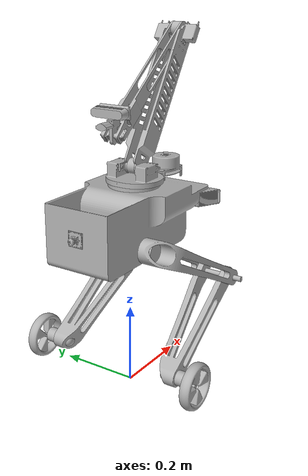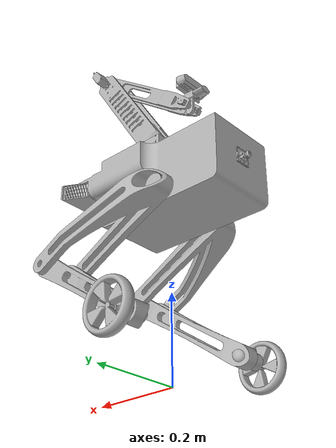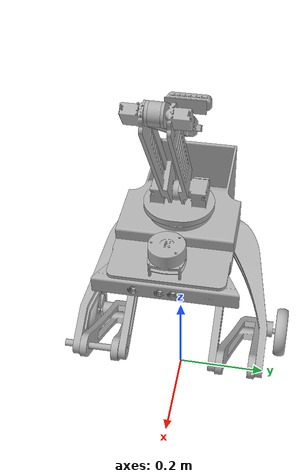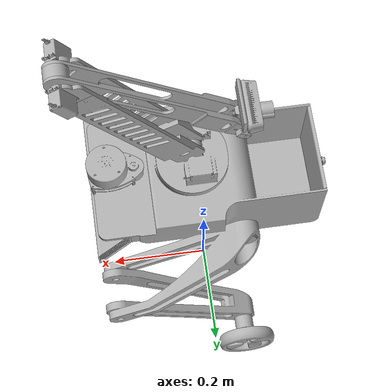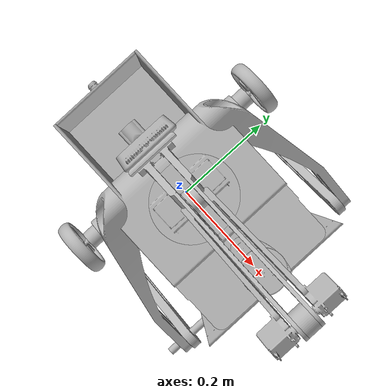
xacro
<?xml version="1.0" ?>
<robot name="vikram_dis" xmlns:xacro="http://www.ros.org/wiki/xacro">

<xacro:include filename="$(find vikram_dis_description)/urdf/materials.xacro" />
<xacro:include filename="$(find vikram_dis_description)/urdf/vikram_dis.trans" />
<xacro:include filename="$(find vikram_dis_description)/urdf/vikram_dis.gazebo" />
<link name="base_link">
  <inertial>
    <origin rpy="0 0 0" xyz="0.010761989671521484 0.005906678158446041 0.43560723373422566"/>
    <mass value="7.067521369442045"/>
    <inertia ixx="0.037702" ixy="-0.000184" ixz="-0.006128" iyy="0.061125" iyz="-4.7e-05" izz="0.069572"/>
  </inertial>
  <visual>
    <origin rpy="0 0 0" xyz="0 0 0"/>
    <geometry>
      <mesh filename="package://vikram_dis_description/meshes/base_link.stl" scale="0.001 0.001 0.001"/>
    </geometry>
    <material name="silver_default"/>
  </visual>
  <collision>
    <origin rpy="0 0 0" xyz="0 0 0"/>
    <geometry>
      <mesh filename="package://vikram_dis_description/meshes/base_link.stl" scale="0.001 0.001 0.001"/>
    </geometry>
  </collision>
</link>

<link name="kinect_link_1">
  <inertial>
    <origin rpy="0 0 0" xyz="0.031040820230747473 8.046398939702895e-05 0.0011790850564638578"/>
    <mass value="0.5422411898927701"/>
    <inertia ixx="0.002787" ixy="1.2e-05" ixz="-1e-06" iyy="0.000223" iyz="-2e-06" izz="0.002879"/>
  </inertial>
  <visual>
    <origin rpy="0 0 0" xyz="-0.145827 -0.006542 -0.459518"/>
    <geometry>
      <mesh filename="package://vikram_dis_description/meshes/kinect_link_1.stl" scale="0.001 0.001 0.001"/>
    </geometry>
    <material name="silver_default"/>
  </visual>
  <collision>
    <origin rpy="0 0 0" xyz="-0.145827 -0.006542 -0.459518"/>
    <geometry>
      <mesh filename="package://vikram_dis_description/meshes/kinect_link_1.stl" scale="0.001 0.001 0.001"/>
    </geometry>
  </collision>
</link>

<link name="camera_link_1">
  <inertial>
    <origin rpy="0 0 0" xyz="-0.005985668066420119 4.195691733565633e-06 -5.422414081512894e-05"/>
    <mass value="0.12265645188988797"/>
    <inertia ixx="1.3e-05" ixy="0.0" ixz="0.0" iyy="1e-05" iyz="0.0" izz="1.1e-05"/>
  </inertial>
  <visual>
    <origin rpy="0 0 0" xyz="0.202318 -0.004514 -0.441351"/>
    <geometry>
      <mesh filename="package://vikram_dis_description/meshes/camera_link_1.stl" scale="0.001 0.001 0.001"/>
    </geometry>
    <material name="silver_default"/>
  </visual>
  <collision>
    <origin rpy="0 0 0" xyz="0.202318 -0.004514 -0.441351"/>
    <geometry>
      <mesh filename="package://vikram_dis_description/meshes/camera_link_1.stl" scale="0.001 0.001 0.001"/>
    </geometry>
  </collision>
</link>

<link name="leftthigh_1">
  <inertial>
    <origin rpy="0 0 0" xyz="0.09689429572694824 0.04650557598173817 -0.05041905595274898"/>
    <mass value="0.4240185441189414"/>
    <inertia ixx="0.001296" ixy="-0.000287" ixz="0.001276" iyy="0.003342" iyz="0.00015" izz="0.003067"/>
  </inertial>
  <visual>
    <origin rpy="0 0 0" xyz="0.057916 -0.090406 -0.387875"/>
    <geometry>
      <mesh filename="package://vikram_dis_description/meshes/leftthigh_1.stl" scale="0.001 0.001 0.001"/>
    </geometry>
    <material name="silver_default"/>
  </visual>
  <collision>
    <origin rpy="0 0 0" xyz="0.057916 -0.090406 -0.387875"/>
    <geometry>
      <mesh filename="package://vikram_dis_description/meshes/leftthigh_1.stl" scale="0.001 0.001 0.001"/>
    </geometry>
  </collision>
</link>

<link name="rightthigh_1">
  <inertial>
    <origin rpy="0 0 0" xyz="0.09711412873531257 -0.04528588750671163 -0.051103183118579976"/>
    <mass value="0.4240185441189414"/>
    <inertia ixx="0.00129" ixy="0.00026" ixz="0.001279" iyy="0.003349" iyz="-0.000136" izz="0.003066"/>
  </inertial>
  <visual>
    <origin rpy="0 0 0" xyz="0.056919 0.079591 -0.387738"/>
    <geometry>
      <mesh filename="package://vikram_dis_description/meshes/rightthigh_1.stl" scale="0.001 0.001 0.001"/>
    </geometry>
    <material name="silver_default"/>
  </visual>
  <collision>
    <origin rpy="0 0 0" xyz="0.056919 0.079591 -0.387738"/>
    <geometry>
      <mesh filename="package://vikram_dis_description/meshes/rightthigh_1.stl" scale="0.001 0.001 0.001"/>
    </geometry>
  </collision>
</link>

<link name="motor_link_1_1">
  <inertial>
    <origin rpy="0 0 0" xyz="-4.2320993852505706e-05 0.0067397772639073705 -1.1375185344442151e-05"/>
    <mass value="0.06999823026998438"/>
    <inertia ixx="3.2e-05" ixy="0.0" ixz="-0.0" iyy="1.1e-05" iyz="-0.0" izz="3.2e-05"/>
  </inertial>
  <visual>
    <origin rpy="0 0 0" xyz="0.055577 0.174343 -0.088016"/>
    <geometry>
      <mesh filename="package://vikram_dis_description/meshes/motor_link_1_1.stl" scale="0.001 0.001 0.001"/>
    </geometry>
    <material name="silver_default"/>
  </visual>
  <collision>
    <origin rpy="0 0 0" xyz="0.055577 0.174343 -0.088016"/>
    <geometry>
      <mesh filename="package://vikram_dis_description/meshes/motor_link_1_1.stl" scale="0.001 0.001 0.001"/>
    </geometry>
  </collision>
</link>

<link name="motor_link_1_2">
  <inertial>
    <origin rpy="0 0 0" xyz="3.7389307303827e-05 -0.006740338975503607 -2.217474401300379e-05"/>
    <mass value="0.06999823026998438"/>
    <inertia ixx="3.2e-05" ixy="0.0" ixz="-0.0" iyy="1.1e-05" iyz="0.0" izz="3.2e-05"/>
  </inertial>
  <visual>
    <origin rpy="0 0 0" xyz="0.058328 -0.185646 -0.089193"/>
    <geometry>
      <mesh filename="package://vikram_dis_description/meshes/motor_link_1_2.stl" scale="0.001 0.001 0.001"/>
    </geometry>
    <material name="silver_default"/>
  </visual>
  <collision>
    <origin rpy="0 0 0" xyz="0.058328 -0.185646 -0.089193"/>
    <geometry>
      <mesh filename="package://vikram_dis_description/meshes/motor_link_1_2.stl" scale="0.001 0.001 0.001"/>
    </geometry>
  </collision>
</link>

<link name="wheel_link_2_2">
  <inertial>
    <origin rpy="0 0 0" xyz="0.00011618333810482773 -0.01985347611789301 -1.660510072408472e-05"/>
    <mass value="0.1426377919274306"/>
    <inertia ixx="0.000147" ixy="-1e-06" ixz="-0.0" iyy="0.000281" iyz="0.0" izz="0.000147"/>
  </inertial>
  <visual>
    <origin rpy="0 0 0" xyz="0.056711 0.200845 -0.081115"/>
    <geometry>
      <mesh filename="package://vikram_dis_description/meshes/wheel_link_2_2.stl" scale="0.001 0.001 0.001"/>
    </geometry>
    <material name="silver_default"/>
  </visual>
  <collision>
    <origin rpy="0 0 0" xyz="0.056711 0.200845 -0.081115"/>
    <geometry>
      <mesh filename="package://vikram_dis_description/meshes/wheel_link_2_2.stl" scale="0.001 0.001 0.001"/>
    </geometry>
  </collision>
</link>

<link name="wheel_link_2_1">
  <inertial>
    <origin rpy="0 0 0" xyz="-0.00011639354809600544 0.01985348551435112 1.6193369433745164e-05"/>
    <mass value="0.1426377919274306"/>
    <inertia ixx="0.000147" ixy="-1e-06" ixz="0.0" iyy="0.000281" iyz="0.0" izz="0.000147"/>
  </inertial>
  <visual>
    <origin rpy="0 0 0" xyz="0.05917 -0.212147 -0.082248"/>
    <geometry>
      <mesh filename="package://vikram_dis_description/meshes/wheel_link_2_1.stl" scale="0.001 0.001 0.001"/>
    </geometry>
    <material name="silver_default"/>
  </visual>
  <collision>
    <origin rpy="0 0 0" xyz="0.05917 -0.212147 -0.082248"/>
    <geometry>
      <mesh filename="package://vikram_dis_description/meshes/wheel_link_2_1.stl" scale="0.001 0.001 0.001"/>
    </geometry>
  </collision>
</link>

<link name="shoulder_link_1">
  <inertial>
    <origin rpy="0 0 0" xyz="0.1053568945975381 0.010444642439717357 0.16921020352325478"/>
    <mass value="0.3248629426538314"/>
    <inertia ixx="0.003938" ixy="-5e-06" ixz="-0.002287" iyy="0.005264" iyz="-9e-06" izz="0.001686"/>
  </inertial>
  <visual>
    <origin rpy="0 0 0" xyz="-0.022826 0.007519 -0.558234"/>
    <geometry>
      <mesh filename="package://vikram_dis_description/meshes/shoulder_link_1.stl" scale="0.001 0.001 0.001"/>
    </geometry>
    <material name="silver_default"/>
  </visual>
  <collision>
    <origin rpy="0 0 0" xyz="-0.022826 0.007519 -0.558234"/>
    <geometry>
      <mesh filename="package://vikram_dis_description/meshes/shoulder_link_1.stl" scale="0.001 0.001 0.001"/>
    </geometry>
  </collision>
</link>

<link name="elbow_link_1">
  <inertial>
    <origin rpy="0 0 0" xyz="-0.1676136269102525 -0.010877895969920668 -0.1315161886982421"/>
    <mass value="0.14217501750592101"/>
    <inertia ixx="0.00078" ixy="-6e-06" ixz="-0.000932" iyy="0.001955" iyz="-5e-06" izz="0.001237"/>
  </inertial>
  <visual>
    <origin rpy="0 0 0" xyz="-0.212379 -0.012807 -0.862827"/>
    <geometry>
      <mesh filename="package://vikram_dis_description/meshes/elbow_link_1.stl" scale="0.001 0.001 0.001"/>
    </geometry>
    <material name="silver_default"/>
  </visual>
  <collision>
    <origin rpy="0 0 0" xyz="-0.212379 -0.012807 -0.862827"/>
    <geometry>
      <mesh filename="package://vikram_dis_description/meshes/elbow_link_1.stl" scale="0.001 0.001 0.001"/>
    </geometry>
  </collision>
</link>

<link name="wrist_link_1">
  <inertial>
    <origin rpy="0 0 0" xyz="-0.00039180122453902344 0.003989844954318769 0.016240023628286027"/>
    <mass value="0.01246916080662524"/>
    <inertia ixx="4e-06" ixy="-0.0" ixz="0.0" iyy="4e-06" iyz="0.0" izz="1e-06"/>
  </inertial>
  <visual>
    <origin rpy="0 0 0" xyz="0.063395 0.002587 -0.646298"/>
    <geometry>
      <mesh filename="package://vikram_dis_description/meshes/wrist_link_1.stl" scale="0.001 0.001 0.001"/>
    </geometry>
    <material name="silver_default"/>
  </visual>
  <collision>
    <origin rpy="0 0 0" xyz="0.063395 0.002587 -0.646298"/>
    <geometry>
      <mesh filename="package://vikram_dis_description/meshes/wrist_link_1.stl" scale="0.001 0.001 0.001"/>
    </geometry>
  </collision>
</link>

<link name="grip_link_1">
  <inertial>
    <origin rpy="0 0 0" xyz="-0.038797241893088086 -0.0001991975188514062 0.0034707933509176003"/>
    <mass value="0.012180779699964627"/>
    <inertia ixx="1e-06" ixy="-0.0" ixz="0.0" iyy="3e-06" iyz="-0.0" izz="3e-06"/>
  </inertial>
  <visual>
    <origin rpy="0 0 0" xyz="0.050444 -0.001435 -0.669602"/>
    <geometry>
      <mesh filename="package://vikram_dis_description/meshes/grip_link_1.stl" scale="0.001 0.001 0.001"/>
    </geometry>
    <material name="silver_default"/>
  </visual>
  <collision>
    <origin rpy="0 0 0" xyz="0.050444 -0.001435 -0.669602"/>
    <geometry>
      <mesh filename="package://vikram_dis_description/meshes/grip_link_1.stl" scale="0.001 0.001 0.001"/>
    </geometry>
  </collision>
</link>

<link name="arm_base_1">
  <inertial>
    <origin rpy="0 0 0" xyz="-0.005791863126462488 -0.0026412661500057584 0.017229692125318885"/>
    <mass value="0.3055003056442891"/>
    <inertia ixx="0.000454" ixy="1e-06" ixz="1.4e-05" iyy="0.000272" iyz="-0.0" izz="0.000597"/>
  </inertial>
  <visual>
    <origin rpy="0 0 0" xyz="-0.024706 -0.005115 -0.52135"/>
    <geometry>
      <mesh filename="package://vikram_dis_description/meshes/arm_base_1.stl" scale="0.001 0.001 0.001"/>
    </geometry>
    <material name="silver_default"/>
  </visual>
  <collision>
    <origin rpy="0 0 0" xyz="-0.024706 -0.005115 -0.52135"/>
    <geometry>
      <mesh filename="package://vikram_dis_description/meshes/arm_base_1.stl" scale="0.001 0.001 0.001"/>
    </geometry>
  </collision>
</link>

<link name="cam_support_1">
  <inertial>
    <origin rpy="0 0 0" xyz="0.005829217868122134 2.218219364242993e-05 0.015136022937292659"/>
    <mass value="0.015667625068621845"/>
    <inertia ixx="9e-06" ixy="0.0" ixz="0.0" iyy="1e-06" iyz="-0.0" izz="8e-06"/>
  </inertial>
  <visual>
    <origin rpy="0 0 0" xyz="0.064281 -0.001377 -0.684292"/>
    <geometry>
      <mesh filename="package://vikram_dis_description/meshes/cam_support_1.stl" scale="0.001 0.001 0.001"/>
    </geometry>
    <material name="silver_default"/>
  </visual>
  <collision>
    <origin rpy="0 0 0" xyz="0.064281 -0.001377 -0.684292"/>
    <geometry>
      <mesh filename="package://vikram_dis_description/meshes/cam_support_1.stl" scale="0.001 0.001 0.001"/>
    </geometry>
  </collision>
</link>

<link name="laser_link_1">
  <inertial>
    <origin rpy="0 0 0" xyz="0.013004844125734216 0.00014021108847628132 0.034655130535815815"/>
    <mass value="0.18084811340421866"/>
    <inertia ixx="8.4e-05" ixy="-0.0" ixz="-2.2e-05" iyy="0.000131" iyz="0.0" izz="0.000149"/>
  </inertial>
  <visual>
    <origin rpy="0 0 0" xyz="-0.150644 -0.006548 -0.487181"/>
    <geometry>
      <mesh filename="package://vikram_dis_description/meshes/laser_link_1.stl" scale="0.001 0.001 0.001"/>
    </geometry>
    <material name="silver_default"/>
  </visual>
  <collision>
    <origin rpy="0 0 0" xyz="-0.150644 -0.006548 -0.487181"/>
    <geometry>
      <mesh filename="package://vikram_dis_description/meshes/laser_link_1.stl" scale="0.001 0.001 0.001"/>
    </geometry>
  </collision>
</link>

<link name="realsense_link_1">
  <inertial>
    <origin rpy="0 0 0" xyz="-0.01156884797060824 0.003455263003606255 -0.0004465098711574633"/>
    <mass value="0.04228675377977692"/>
    <inertia ixx="2.8e-05" ixy="0.0" ixz="-0.0" iyy="4e-06" iyz="-0.0" izz="2.8e-05"/>
  </inertial>
  <visual>
    <origin rpy="0 0 0" xyz="0.062122 -0.001378 -0.699345"/>
    <geometry>
      <mesh filename="package://vikram_dis_description/meshes/realsense_link_1.stl" scale="0.001 0.001 0.001"/>
    </geometry>
    <material name="silver_default"/>
  </visual>
  <collision>
    <origin rpy="0 0 0" xyz="0.062122 -0.001378 -0.699345"/>
    <geometry>
      <mesh filename="package://vikram_dis_description/meshes/realsense_link_1.stl" scale="0.001 0.001 0.001"/>
    </geometry>
  </collision>
</link>

<link name="front_name_1">
  <inertial>
    <origin rpy="0 0 0" xyz="0.0009886391869325106 0.002240109079289678 -0.00026722291772435236"/>
    <mass value="0.0013045732982823952"/>
    <inertia ixx="1e-06" ixy="0.0" ixz="0.0" iyy="0.0" iyz="0.0" izz="1e-06"/>
  </inertial>
  <visual>
    <origin rpy="0 0 0" xyz="-0.131142 -0.006494 -0.411713"/>
    <geometry>
      <mesh filename="package://vikram_dis_description/meshes/front_name_1.stl" scale="0.001 0.001 0.001"/>
    </geometry>
    <material name="silver_default"/>
  </visual>
  <collision>
    <origin rpy="0 0 0" xyz="-0.131142 -0.006494 -0.411713"/>
    <geometry>
      <mesh filename="package://vikram_dis_description/meshes/front_name_1.stl" scale="0.001 0.001 0.001"/>
    </geometry>
  </collision>
</link>

<link name="rightleg_1">
  <inertial>
    <origin rpy="0 0 0" xyz="-0.12012286223126097 0.03292496120188243 -0.0816975834089387"/>
    <mass value="0.33293610955358743"/>
    <inertia ixx="0.001612" ixy="-0.000206" ixz="-0.001899" iyy="0.004214" iyz="-0.000141" izz="0.003097"/>
  </inertial>
  <visual>
    <origin rpy="0 0 0" xyz="-0.191706 0.173029 -0.257869"/>
    <geometry>
      <mesh filename="package://vikram_dis_description/meshes/rightleg_1.stl" scale="0.001 0.001 0.001"/>
    </geometry>
    <material name="silver_default"/>
  </visual>
  <collision>
    <origin rpy="0 0 0" xyz="-0.191706 0.173029 -0.257869"/>
    <geometry>
      <mesh filename="package://vikram_dis_description/meshes/rightleg_1.stl" scale="0.001 0.001 0.001"/>
    </geometry>
  </collision>
</link>

<link name="leftleg_1">
  <inertial>
    <origin rpy="0 0 0" xyz="-0.11989589808092872 0.04579943998290448 -0.08212882937282706"/>
    <mass value="0.33293610955358743"/>
    <inertia ixx="0.001616" ixy="0.000178" ixz="-0.001904" iyy="0.004218" iyz="0.000121" izz="0.003088"/>
  </inertial>
  <visual>
    <origin rpy="0 0 0" xyz="-0.190049 -0.106966 -0.258067"/>
    <geometry>
      <mesh filename="package://vikram_dis_description/meshes/leftleg_1.stl" scale="0.001 0.001 0.001"/>
    </geometry>
    <material name="silver_default"/>
  </visual>
  <collision>
    <origin rpy="0 0 0" xyz="-0.190049 -0.106966 -0.258067"/>
    <geometry>
      <mesh filename="package://vikram_dis_description/meshes/leftleg_1.stl" scale="0.001 0.001 0.001"/>
    </geometry>
  </collision>
</link>

<link name="rod_1">
  <inertial>
    <origin rpy="0 0 0" xyz="-0.0001641310493621928 0.027999088902548985 2.294266050278937e-05"/>
    <mass value="0.01959163529215445"/>
    <inertia ixx="2.7e-05" ixy="0.0" ixz="0.0" iyy="0.0" iyz="-0.0" izz="2.7e-05"/>
  </inertial>
  <visual>
    <origin rpy="0 0 0" xyz="-0.1917 0.172029 -0.257869"/>
    <geometry>
      <mesh filename="package://vikram_dis_description/meshes/rod_1.stl" scale="0.001 0.001 0.001"/>
    </geometry>
    <material name="silver_default"/>
  </visual>
  <collision>
    <origin rpy="0 0 0" xyz="-0.1917 0.172029 -0.257869"/>
    <geometry>
      <mesh filename="package://vikram_dis_description/meshes/rod_1.stl" scale="0.001 0.001 0.001"/>
    </geometry>
  </collision>
</link>

<link name="rod_2">
  <inertial>
    <origin rpy="0 0 0" xyz="0.0001647060768620312 -0.027999269194341786 -2.2675294601759433e-05"/>
    <mass value="0.01959163529215445"/>
    <inertia ixx="2.7e-05" ixy="0.0" ixz="0.0" iyy="0.0" iyz="-0.0" izz="2.7e-05"/>
  </inertial>

  <collision>
    <origin rpy="0 0 0" xyz="-0.189585 -0.185964 -0.258131"/>
    <geometry>
      <mesh filename="package://vikram_dis_description/meshes/rod_2.stl" scale="0.001 0.001 0.001"/>
    </geometry>
  </collision>
</link>

<link name="stand_1">
  <inertial>
    <origin rpy="0 0 0" xyz="0.0592642999235653 0.009345756081004797 -0.14300593642992077"/>
    <mass value="0.11613787843167664"/>
    <inertia ixx="0.000536" ixy="-1e-06" ixz="0.000176" iyy="0.000601" iyz="1e-06" izz="7.7e-05"/>
  </inertial>

  <collision>
    <origin rpy="0 0 0" xyz="-0.191911 0.208029 -0.25784"/>
    <geometry>
      <mesh filename="package://vikram_dis_description/meshes/stand_1.stl" scale="0.001 0.001 0.001"/>
    </geometry>
  </collision>
</link>

<link name="stand_2">
  <inertial>
    <origin rpy="0 0 0" xyz="0.061855284133028765 -0.008420795671348957 -0.14196366414859674"/>
    <mass value="0.11613787843167664"/>
    <inertia ixx="0.00053" ixy="-1e-06" ixz="0.000184" iyy="0.000601" iyz="1e-06" izz="8.3e-05"/>
  </inertial>

  <collision>
    <origin rpy="0 0 0" xyz="-0.189374 -0.221964 -0.25816"/>
    <geometry>
      <mesh filename="package://vikram_dis_description/meshes/stand_2.stl" scale="0.001 0.001 0.001"/>
    </geometry>
  </collision>
</link>

<joint name="Rigid1" type="fixed">
  <origin rpy="0 0 0" xyz="0.145827 0.006542 0.459518"/>
  <parent link="base_link"/>
  <child link="kinect_link_1"/>
</joint>

<joint name="Rigid3" type="fixed">
  <origin rpy="0 0 0" xyz="-0.202318 0.004514 0.441351"/>
  <parent link="base_link"/>
  <child link="camera_link_1"/>
</joint>

<joint name="thigh_base_left" type="fixed">
  <origin rpy="0 0 0" xyz="-0.057916 0.090406 0.387875"/>
  <parent link="base_link"/>
  <child link="leftthigh_1"/>
  <axis xyz="-0.005867 0.999982 0.000806"/>
</joint>

<joint name="thigh_base_right" type="fixed">
  <origin rpy="0 0 0" xyz="-0.056919 -0.079591 0.387738"/>
  <parent link="base_link"/>
  <child link="rightthigh_1"/>
  <axis xyz="0.005867 -0.999982 -0.000806"/>
</joint>

<joint name="Rigid28" type="fixed">
  <origin rpy="0 0 0" xyz="-0.247283 -0.001314 -0.169853"/>
  <parent link="rightleg_1"/>
  <child link="motor_link_1_1"/>
</joint>

<joint name="Rigid29" type="fixed">
  <origin rpy="0 0 0" xyz="-0.248377 0.07868 -0.168874"/>
  <parent link="leftleg_1"/>
  <child link="motor_link_1_2"/>
</joint>

<joint name="wheel_right" type="continuous">
  <origin rpy="0 0 0" xyz="-0.001134 -0.026502 -0.006901"/>
  <parent link="motor_link_1_1"/>
  <child link="wheel_link_2_2"/>
  <axis xyz="0.005867 0.999982 0.000806"/>
</joint>

<joint name="wheel_left" type="continuous">
  <origin rpy="0 0 0" xyz="-0.000842 0.026501 -0.006945"/>
  <parent link="motor_link_1_2"/>
  <child link="wheel_link_2_1"/>
  <axis xyz="0.005867 0.999982 0.000806"/>
</joint>

<joint name="shoulder" type="fixed">
  <origin rpy="0 0 0" xyz="-0.00188 -0.012634 0.036884"/>
  <parent link="arm_base_1"/>
  <child link="shoulder_link_1"/>
  <axis xyz="-0.005867 0.999982 0.000806"/>
</joint>

<joint name="elbow" type="fixed">
  <origin rpy="0 0 0" xyz="0.189553 0.020326 0.304593"/>
  <parent link="shoulder_link_1"/>
  <child link="elbow_link_1"/>
  <axis xyz="0.005867 -0.999982 -0.000806"/>
</joint>

<joint name="wrist" type="fixed">
  <origin rpy="0 0 0" xyz="-0.275774 -0.015394 -0.216529"/>
  <parent link="elbow_link_1"/>
  <child link="wrist_link_1"/>
  <axis xyz="-0.005867 0.999982 0.000806"/>
</joint>

<joint name="Rigid41" type="fixed">
  <origin rpy="0 0 0" xyz="0.012951 0.004022 0.023304"/>
  <parent link="wrist_link_1"/>
  <child link="grip_link_1"/>
</joint>

<joint name="arm_base" type="fixed">
  <origin rpy="0 0 0" xyz="0.024706 0.005115 0.52135"/>
  <parent link="base_link"/>
  <child link="arm_base_1"/>
  <axis xyz="-0.006594 -0.000845 0.999978"/>
</joint>

<joint name="Rigid43" type="fixed">
  <origin rpy="0 0 0" xyz="-0.000886 0.003964 0.037994"/>
  <parent link="wrist_link_1"/>
  <child link="cam_support_1"/>
</joint>

<joint name="Rigid46" type="fixed">
  <origin rpy="0 0 0" xyz="0.150644 0.006548 0.498181"/>
  <parent link="base_link"/>
  <child link="laser_link_1"/>
</joint>

<joint name="Rigid48" type="fixed">
  <origin rpy="0 0 0" xyz="0.002159 1e-06 0.015053"/>
  <parent link="cam_support_1"/>
  <child link="realsense_link_1"/>
</joint>

<joint name="Rigid51" type="fixed">
  <origin rpy="0 0 0" xyz="0.131142 0.006494 0.411713"/>
  <parent link="base_link"/>
  <child link="front_name_1"/>
</joint>

<joint name="leg_thigh_right" type="fixed">
  <origin rpy="0 0 0" xyz="0.248625 -0.093438 -0.129869"/>
  <parent link="rightthigh_1"/>
  <child link="rightleg_1"/>
  <axis xyz="-0.005867 0.999982 0.000806"/>
</joint>

<joint name="leg_thigh_left" type="fixed">
  <origin rpy="0 0 0" xyz="0.247965 0.01656 -0.129808"/>
  <parent link="leftthigh_1"/>
  <child link="leftleg_1"/>
  <axis xyz="0.005867 -0.999982 -0.000806"/>
</joint>

<joint name="rod_leg_right" type="fixed">
  <origin rpy="0 0 0" xyz="-6e-06 0.001 0.0"/>
  <parent link="rightleg_1"/>
  <child link="rod_1"/>
</joint>

<joint name="rod_leg_left" type="fixed">
  <origin rpy="0 0 0" xyz="-0.000464 0.078998 6.4e-05"/>
  <parent link="leftleg_1"/>
  <child link="rod_2"/>
</joint>

<joint name="Rev58" type="fixed">
  <origin rpy="0 0 0" xyz="0.000211 -0.036 -2.9e-05"/>
  <parent link="rod_1"/>
  <child link="stand_1"/>
  <axis xyz="0.005867 -0.999982 -0.000806"/>
</joint>

<joint name="Rev59" type="fixed">
  <origin rpy="0 0 0" xyz="-0.000211 0.036 2.9e-05"/>
  <parent link="rod_2"/>
  <child link="stand_2"/>
  <axis xyz="-0.005867 0.999982 0.000806"/>
</joint>

</robot>

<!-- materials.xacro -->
<robot name="vikram_dis" xmlns:xacro="http://www.ros.org/wiki/xacro" >

<material name="silver_default">
  <color rgba="0.700 0.700 0.700 1.000"/>
</material>

</robot>

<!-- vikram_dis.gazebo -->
<robot name="vikram_dis" xmlns:xacro="http://www.ros.org/wiki/xacro" >

<xacro:property name="body_color" value="Gazebo/Silver" />

<gazebo>
  <plugin filename="libgazebo_ros_control.so" name="control"/>
</gazebo>
<gazebo reference="base_link">
  <material>${body_color}</material>
  <mu1>0.2</mu1>
  <mu2>0.2</mu2>
  <selfCollide>true</selfCollide>
  <gravity>true</gravity>
</gazebo>

<gazebo reference="kinect_link_1">
  <material>${body_color}</material>
  <mu1>0.2</mu1>
  <mu2>0.2</mu2>
  <selfCollide>true</selfCollide>
</gazebo>

<gazebo reference="camera_link_1">
  <material>${body_color}</material>
  <mu1>0.2</mu1>
  <mu2>0.2</mu2>
  <selfCollide>true</selfCollide>
</gazebo>

<gazebo reference="leftthigh_1">
  <material>${body_color}</material>
  <mu1>0.2</mu1>
  <mu2>0.2</mu2>
  <selfCollide>true</selfCollide>
</gazebo>

<gazebo reference="rightthigh_1">
  <material>${body_color}</material>
  <mu1>0.2</mu1>
  <mu2>0.2</mu2>
  <selfCollide>true</selfCollide>
</gazebo>

<gazebo reference="motor_link_1_1">
  <material>${body_color}</material>
  <mu1>0.2</mu1>
  <mu2>0.2</mu2>
  <selfCollide>true</selfCollide>
</gazebo>

<gazebo reference="motor_link_1_2">
  <material>${body_color}</material>
  <mu1>0.2</mu1>
  <mu2>0.2</mu2>
  <selfCollide>true</selfCollide>
</gazebo>

<gazebo reference="wheel_link_2_2">
  <material>${body_color}</material>
  <mu1>100</mu1>
  <mu2>100</mu2>
  <selfCollide>true</selfCollide>
</gazebo>

<gazebo reference="wheel_link_2_1">
  <material>${body_color}</material>
  <mu1>100</mu1>
  <mu2>100</mu2>
  <selfCollide>true</selfCollide>
</gazebo>

<gazebo reference="shoulder_link_1">
  <material>${body_color}</material>
  <mu1>0.2</mu1>
  <mu2>0.2</mu2>
  <selfCollide>true</selfCollide>
</gazebo>

<gazebo reference="elbow_link_1">
  <material>${body_color}</material>
  <mu1>0.2</mu1>
  <mu2>0.2</mu2>
  <selfCollide>true</selfCollide>
</gazebo>

<gazebo reference="wrist_link_1">
  <material>${body_color}</material>
  <mu1>0.2</mu1>
  <mu2>0.2</mu2>
  <selfCollide>true</selfCollide>
</gazebo>

<gazebo reference="grip_link_1">
  <material>${body_color}</material>
  <mu1>0.2</mu1>
  <mu2>0.2</mu2>
  <selfCollide>true</selfCollide>
</gazebo>

<gazebo reference="arm_base_1">
  <material>${body_color}</material>
  <mu1>0.2</mu1>
  <mu2>0.2</mu2>
  <selfCollide>true</selfCollide>
</gazebo>

<gazebo reference="cam_support_1">
  <material>${body_color}</material>
  <mu1>0.2</mu1>
  <mu2>0.2</mu2>
  <selfCollide>true</selfCollide>
</gazebo>

<gazebo reference="laser_link_1">
  <material>${body_color}</material>
  <mu1>0.2</mu1>
  <mu2>0.2</mu2>
  <selfCollide>true</selfCollide>
</gazebo>

<gazebo reference="realsense_link_1">
  <material>${body_color}</material>
  <mu1>0.2</mu1>
  <mu2>0.2</mu2>
  <selfCollide>true</selfCollide>
</gazebo>

<gazebo reference="front_name_1">
  <material>${body_color}</material>
  <mu1>0.2</mu1>
  <mu2>0.2</mu2>
  <selfCollide>true</selfCollide>
</gazebo>

<gazebo reference="rightleg_1">
  <material>${body_color}</material>
  <mu1>0.2</mu1>
  <mu2>0.2</mu2>
  <selfCollide>true</selfCollide>
</gazebo>

<gazebo reference="leftleg_1">
  <material>${body_color}</material>
  <mu1>0.2</mu1>
  <mu2>0.2</mu2>
  <selfCollide>true</selfCollide>
</gazebo>

<gazebo reference="rod_1">
  <material>${body_color}</material>
  <mu1>0.2</mu1>
  <mu2>0.2</mu2>
  <selfCollide>true</selfCollide>
</gazebo>

<gazebo reference="rod_2">
  <material>${body_color}</material>
  <mu1>0.2</mu1>
  <mu2>0.2</mu2>
  <selfCollide>true</selfCollide>
</gazebo>

<gazebo reference="stand_1">
  <material>${body_color}</material>
  <mu1>0.01</mu1>
  <mu2>0.01</mu2>
  <selfCollide>true</selfCollide>
</gazebo>

<gazebo reference="stand_2">
  <material>${body_color}</material>
  <mu1>0.01</mu1>
  <mu2>0.01</mu2>
  <selfCollide>true</selfCollide>
</gazebo>
  <!-- camera -->
  <gazebo reference="camera_link_1">
    <sensor type="camera" name="back_camera">
      <update_rate>30.0</update_rate>
      <camera name="back_camera">
        <horizontal_fov>1.3962634</horizontal_fov>
        <image>
          <width>800</width>
          <height>800</height>
          <format>R8G8B8</format>
        </image>
        <clip>
          <near>0.02</near>
          <far>300</far>
        </clip>
        <noise>
          <type>gaussian</type>
          <!-- Noise is sampled independently per pixel on each frame.
               That pixel's noise value is added to each of its color
               channels, which at that point lie in the range [0,1]. -->
          <mean>0.0</mean>
          <stddev>0.007</stddev>
        </noise>
      </camera>
      <plugin name="camera_controller" filename="libgazebo_ros_camera.so">
        <alwaysOn>true</alwaysOn>
        <updateRate>0.0</updateRate>
        <cameraName>back_camera</cameraName>
        <imageTopicName>image_raw</imageTopicName>
        <cameraInfoTopicName>camera_info</cameraInfoTopicName>
        <frameName>camera_link_1</frameName>
        <hackBaseline>0.07</hackBaseline>
        <distortionK1>0.0</distortionK1>
        <distortionK2>0.0</distortionK2>
        <distortionK3>0.0</distortionK3>
        <distortionT1>0.0</distortionT1>
        <distortionT2>0.0</distortionT2>
      </plugin>
    </sensor>
  </gazebo>
<!-- Kinect camera-->
<gazebo reference="kinect_link_1">
  <sensor name="kinect_link_1_camera" type="depth">
    <pose>0 0 0 0 0 0</pose>
    <visualize>true</visualize>
    <update_rate>20</update_rate>
    <camera>
      <horizontal_fov>1.047198</horizontal_fov>
      <image>
        <width>640</width>
        <height>480</height>
        <format>R8G8B8</format>
      </image>
      <clip>
        <near>0.2</near>
        <far>6</far>
      </clip>
    </camera>
    <plugin name="kinect_link_1_controller" filename="libgazebo_ros_openni_kinect.so">
      <baseline>0.5</baseline>
      <alwaysOn>true</alwaysOn>
      <updateRate>0.0</updateRate>

      <cameraName>kinect</cameraName>
      <imageTopicName>/kinect/color/image_raw</imageTopicName>
      <cameraInfoTopicName>/kinect/color/camera_info</cameraInfoTopicName>
      <depthImageTopicName>/kinect/depth/image_raw</depthImageTopicName>
      <depthImageInfoTopicName>/kinect/depth/camera_info</depthImageInfoTopicName>
      <pointCloudTopicName>/kinect/depth/points</pointCloudTopicName>
      <frameName>kinect_depth_link</frameName>
      <pointCloudCutoff>0.5</pointCloudCutoff>
      <pointCloudCutoffMax>8.0</pointCloudCutoffMax>
      <distortionK1>0.00000001</distortionK1>
      <distortionK2>0.00000001</distortionK2>
      <distortionK3>0.00000001</distortionK3>
      <distortionT1>0.00000001</distortionT1>
      <distortionT2>0.00000001</distortionT2>
      <CxPrime>0</CxPrime>
      <Cx>0</Cx>
      <Cy>0</Cy>
      <focalLength>0</focalLength>
      <hackBaseline>0</hackBaseline>
    </plugin>
  </sensor>
</gazebo>

  <!-- laser -->
  <gazebo reference="laser_link_1">
    <sensor type="ray" name="laser_link_1">
      <pose>0 0 0 0 0 0</pose>
      <visualize>true</visualize>
      <update_rate>40</update_rate>
      <ray>
        <scan>
          <horizontal>
            <samples>720</samples>
            <resolution>1</resolution>
            <min_angle>-1.57</min_angle>
            <max_angle>1.57</max_angle>
          </horizontal>
        </scan>
        <range>
          <min>0.1</min>
          <max>6.0</max>
          <resolution>0.01</resolution>
        </range>
        <noise>
          <type>gaussian</type>
          <mean>0.0</mean>
          <stddev>0.01</stddev>
        </noise>
      </ray>
      <plugin name="gazebo_ros_head_hokuyo_controller" filename="libgazebo_ros_laser.so">
        <topicName>/laser/scan</topicName>
        <frameName>laser_link_1</frameName>
      </plugin>
    </sensor>
  </gazebo>

<!-- differential drive-->
  <gazebo>
    <plugin name="differential_drive_controller" filename="libgazebo_ros_diff_drive.so">

      <!-- Plugin update rate in Hz -->
      <updateRate>40</updateRate>

      <!-- Name of left joint, defaults to `left_joint` -->
      <leftJoint>wheel_left</leftJoint>

      <!-- Name of right joint, defaults to `right_joint` -->
      <rightJoint>wheel_right</rightJoint>

      <!-- The distance from the center of one wheel to the other, in meters, defaults to 0.34 m -->
      <wheelSeparation>0.429</wheelSeparation>

      <!-- Diameter of the wheels, in meters, defaults to 0.15 m -->
      <wheelDiameter>0.108</wheelDiameter>

      <!-- Wheel acceleration, in rad/s^2, defaults to 0.0 rad/s^2 -->
      <wheelAcceleration>1.0</wheelAcceleration>

      <!-- Maximum torque which the wheels can produce, in Nm, defaults to 5 Nm -->
      <wheelTorque>200</wheelTorque>

      <!-- Topic to receive geometry_msgs/Twist message commands, defaults to `cmd_vel` -->
      <commandTopic>cmd_vel</commandTopic>

      <!-- Topic to publish nav_msgs/Odometry messages, defaults to `odom` -->
      <odometryTopic>odom</odometryTopic>

      <!-- Odometry frame, defaults to `odom` -->
      <odometryFrame>odom</odometryFrame>

      <!-- Robot frame to calculate odometry from, defaults to `base_footprint` -->
      <robotBaseFrame>base_link</robotBaseFrame>

      <!-- Odometry source, 0 for ENCODER, 1 for WORLD, defaults to WORLD -->
      <odometrySource>1</odometrySource>

      <!-- Set to true to publish transforms for the wheel links, defaults to false -->
      <publishWheelTF>true</publishWheelTF>

      <!-- Set to true to publish transforms for the odometry, defaults to true -->
      <publishOdom>true</publishOdom>

      <!-- Set to true to publish sensor_msgs/JointState on /joint_states for the wheel joints, defaults to false -->
      <publishWheelJointState>true</publishWheelJointState>

      <!-- Set to true to swap right and left wheels, defaults to true -->
      <legacyMode>false</legacyMode>
    </plugin>
  </gazebo>

</robot>
